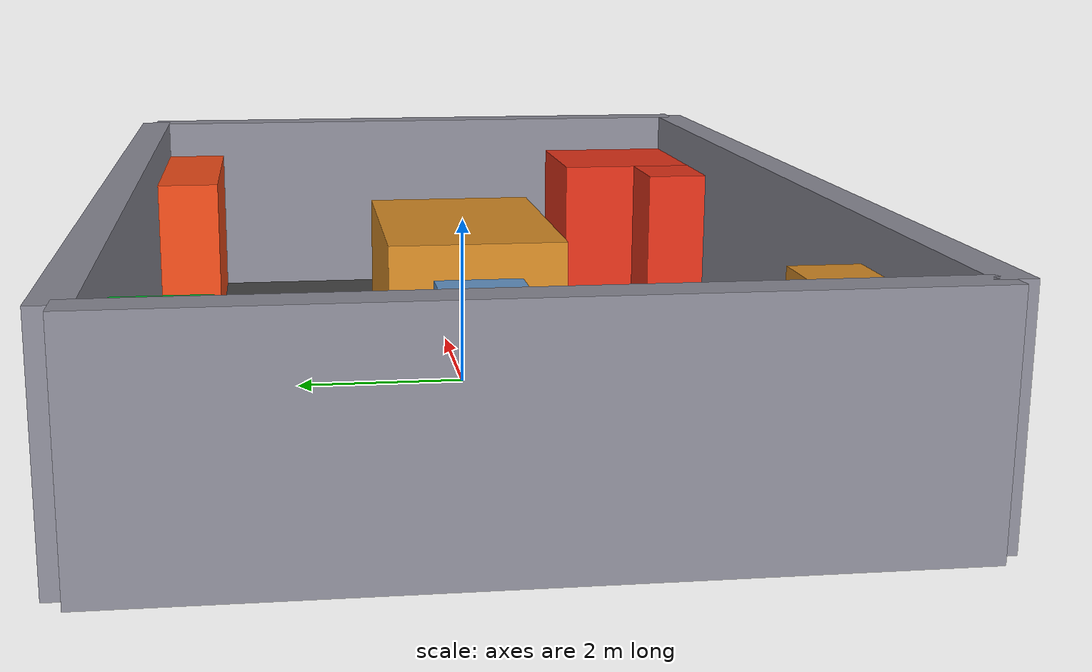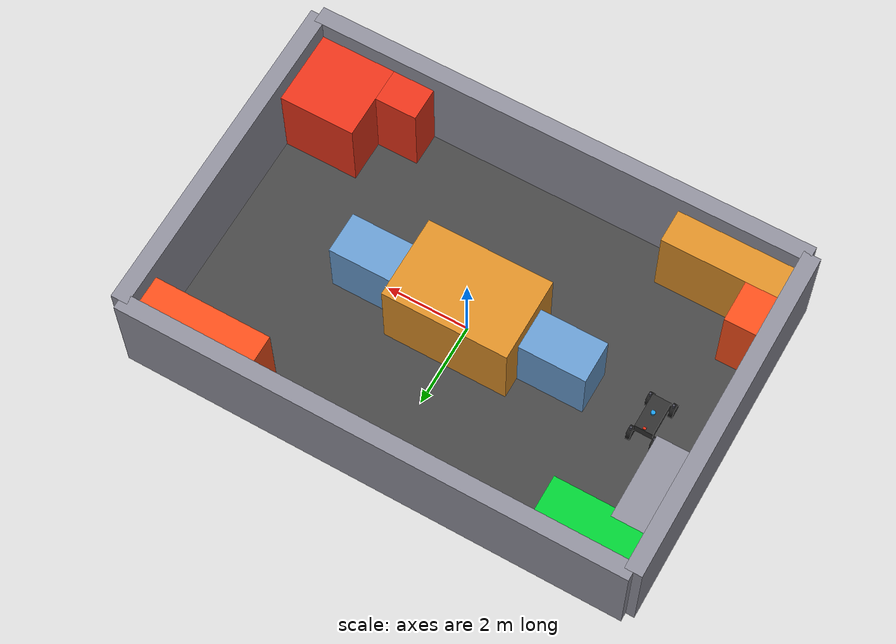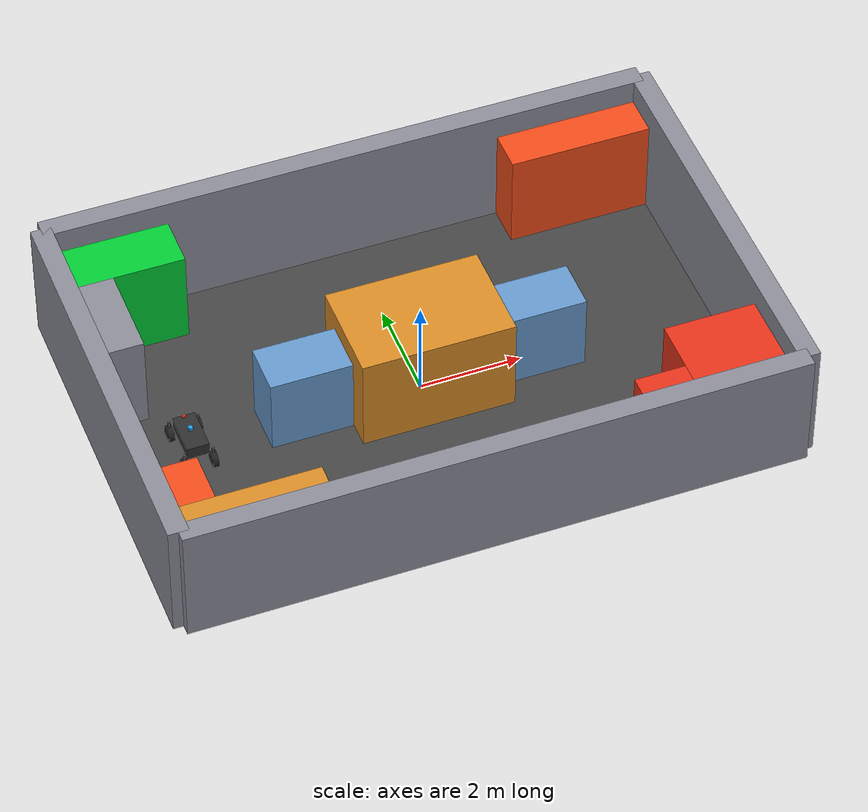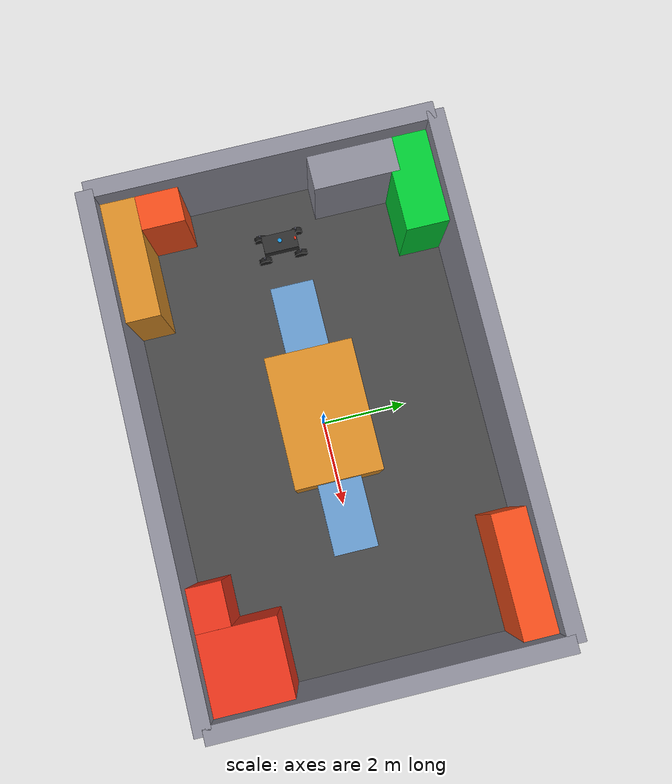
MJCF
<mujoco model="ranger_test_env">
  <compiler angle="radian" meshdir="C:\Users\sanmi\Desktop\projects\RL\ranger_mujoco\meshes/"/>

  <option timestep="0.004" integrator="RK4"/>

  <default>
    <joint armature="0.01" damping="1"/>
    <geom condim="4" friction="1.2 0.01 0.001"/>
  </default>

  <asset>
    <texture type="2d" colorspace="auto" name="floor_tex" builtin="checker" rgb1="0.22 0.22 0.22" rgb2="0.32 0.32 0.32" width="512" height="512"/>
    <material name="floor_mat" texture="floor_tex" texrepeat="20 20"/>
    <material name="start_mat" rgba="0 0.8 0.2 1"/>
    <material name="finish_mat" rgba="0.9 0.2 0.1 1"/>
    <material name="wall_mat" rgba="0.55 0.55 0.6 1"/>
    <material name="box_mat" rgba="0.85 0.55 0.15 1"/>
    <material name="cone_mat" rgba="0.95 0.3 0.1 1"/>
    <material name="ramp_mat" rgba="0.4 0.6 0.8 1"/>
    <material name="chassis_mat" rgba="0.18 0.18 0.18 1"/>
    <material name="wheel_mat" rgba="0.12 0.12 0.12 1"/>
    <material name="steering_mat" rgba="0.3 0.3 0.35 1"/>
    <material name="cam_mat" rgba="0.9 0.2 0.1 1"/>
    <material name="lidar_mat" rgba="0.1 0.6 0.9 1"/>
  </asset>

  <worldbody>
    <geom name="floor" size="6 4 0.1" type="plane" material="floor_mat"/>
    <geom name="wall_n" size="6 0.2 1.25" pos="0 4 1.25" type="box" material="wall_mat"/>
    <geom name="wall_s" size="6 0.2 1.25" pos="0 -4 1.25" type="box" material="wall_mat"/>
    <geom name="wall_e" size="0.2 4 1.25" pos="6 0 1.25" type="box" material="wall_mat"/>
    <geom name="wall_w" size="0.2 4 1.25" pos="-6 0 1.25" type="box" material="wall_mat"/>
    <geom name="obs_center" size="1.5 1 1" pos="0 0 1" type="box" material="box_mat"/>
    <geom name="obs_center_l" size="0.8 0.5 0.8" pos="-2.3 0 0.8" type="box" material="ramp_mat"/>
    <geom name="obs_center_r" size="0.8 0.5 0.8" pos="2.3 0 0.8" type="box" material="ramp_mat"/>
    <geom name="obs_tl1" size="1.2 0.6 1" pos="-4.8 3.4 1" type="box" material="start_mat"/>
    <geom name="obs_tl2" size="0.5 1 1" pos="-5.5 2 1" type="box" material="wall_mat"/>
    <geom name="obs_br1" size="1 1 1" pos="5 -3 1" type="box" material="finish_mat"/>
    <geom name="obs_br2" size="0.5 0.5 1" pos="3.5 -3.5 1" type="box" material="finish_mat"/>
    <geom name="obs_tr1" size="1.5 0.5 1" pos="4.5 3.5 1" type="box" material="cone_mat"/>
    <geom name="obs_bl1" size="1.5 0.5 1" pos="-4.5 -3.5 1" type="box" material="box_mat"/>
    <geom name="obs_bl2" size="0.5 0.5 1" pos="-5.5 -2.5 1" type="box" material="cone_mat"/>
    <light name="sun" pos="0 0 12" dir="0 0 -1" diffuse="0.8 0.8 0.8" specular="0.2 0.2 0.2"/>
    <light name="warm_fill" pos="-4 -2 4" dir="0.666667 0.333333 -0.666667" castshadow="false" diffuse="0.8 0.5 0.3"/>
    <light name="cool_fill" pos="4 2 4" dir="-0.666667 -0.333333 -0.666667" castshadow="false" diffuse="0.3 0.5 0.8"/>
    <light name="green_fill" pos="0 3 4" dir="0 -0.707107 -0.707107" castshadow="false" diffuse="0.2 0.6 0.3"/>
    <body name="base_link" pos="-4.5 0 0.34" quat="0.707105 0 0 0.707108">
      <inertial pos="-0.0169 0.0068 0.0578" quat="0.00119372 0.705639 -0.00126792 0.708569" mass="88.757" diaginertia="6.39438 4.90034 1.71218"/>
      <joint name="root" type="free" armature="0" damping="0"/>
      <geom name="chassis_box" size="0.42 0.22 0.12" pos="0 0 0.02" type="box" material="chassis_mat"/>
      <site name="imu_site" pos="0 0 0" size="0.01"/>
      <body name="camera_link" pos="0.38 0 0.15">
        <geom name="cam_marker" size="0.025 0.035 0.02" type="box" contype="0" conaffinity="0" material="cam_mat"/>
        <camera name="front_cam" pos="0 0 0" quat="0.707105 0 0.707108 0" fovy="80"/>
      </body>
      <body name="lidar_link" pos="0 0 0.22">
        <geom name="lidar_marker" size="0.05 0.03" type="cylinder" contype="0" conaffinity="0" material="lidar_mat"/>
        <camera name="lidar_cam" pos="0 0 0" quat="0.707105 0 0.707108 0" fovy="1"/>
      </body>
      <body name="fr_steering_link" pos="0.445 -0.28 0.0335">
        <inertial pos="0.0001118 -0.0073218 -0.085228" quat="0.501203 0.501505 -0.498791 0.498493" mass="2.0957" diaginertia="0.00792211 0.0077827 0.0012664"/>
        <joint name="fr_steering_joint" pos="0 0 0" axis="0 0 -1" range="-0.6109 0.6109" armature="0.05" damping="5"/>
        <geom name="fr_knuckle" size="0.025 0.06" pos="0 0 -0.06" type="cylinder" contype="0" conaffinity="0" material="steering_mat"/>
        <body name="fr_wheel_link" pos="0 0.001 -0.2918">
          <inertial pos="-0.00095 0 0.0021" quat="2.22586e-06 0.707112 2.22589e-06 0.707102" mass="11.468" diaginertia="0.11423 0.08008 0.05332"/>
          <joint name="fr_wheel_joint" pos="0 0 0" axis="0 1 0" limited="false" damping="0.5"/>
          <geom name="fr_wheel_col" size="0.16 0.055" quat="0.707105 0.707108 0 0" type="cylinder" material="wheel_mat"/>
        </body>
      </body>
      <body name="fl_steering_wheel_link" pos="0.445 0.28 0.0335">
        <inertial pos="0.00010411 0.0077919 -0.086394" quat="0.50254 0.50229 -0.497448 0.497698" mass="2.1046" diaginertia="0.00792301 0.00778359 0.0012676"/>
        <joint name="fl_steering_joint" pos="0 0 0" axis="0 0 -1" range="-0.6109 0.6109" armature="0.05" damping="5"/>
        <geom name="fl_knuckle" size="0.025 0.06" pos="0 0 -0.06" type="cylinder" contype="0" conaffinity="0" material="steering_mat"/>
        <body name="fl_wheel_link" pos="0 -0.001 -0.29345">
          <inertial pos="0.000311 0 -0.002099" quat="2.22586e-06 0.707112 2.22589e-06 0.707102" mass="11.4679" diaginertia="0.11423 0.08008 0.05332"/>
          <joint name="fl_wheel_joint" pos="0 0 0" axis="0 1 0" limited="false" damping="0.5"/>
          <geom name="fl_wheel_col" size="0.16 0.055" quat="0.707105 0.707108 0 0" type="cylinder" material="wheel_mat"/>
        </body>
      </body>
      <body name="rl_steering_wheel_link" pos="-0.445 0.28 0.0335">
        <inertial pos="0.000105 0.007473 -0.085165" quat="0.502547 0.502297 -0.497441 0.497691" mass="2.09214" diaginertia="0.00792201 0.00778299 0.001266"/>
        <joint name="rl_steering_joint" pos="0 0 0" axis="0 0 -1" range="-0.6109 0.6109" armature="0.05" damping="5"/>
        <geom name="rl_knuckle" size="0.025 0.06" pos="0 0 -0.06" type="cylinder" contype="0" conaffinity="0" material="steering_mat"/>
        <body name="rl_wheel_link" pos="0 -0.001 -0.29345">
          <inertial pos="0.000311 0 -0.002099" quat="2.22586e-06 0.707112 2.22589e-06 0.707102" mass="11.4679" diaginertia="0.11423 0.08008 0.05332"/>
          <joint name="rl_wheel_joint" pos="0 0 0" axis="0 1 0" limited="false" damping="0.5"/>
          <geom name="rl_wheel_col" size="0.16 0.055" quat="0.707105 0.707108 0 0" type="cylinder" material="wheel_mat"/>
        </body>
      </body>
      <body name="rr_steering_wheel_link" pos="-0.445 -0.28 0.0335">
        <inertial pos="0.000105 0.007473 -0.085165" quat="0.502547 0.502297 -0.497441 0.497691" mass="2.09214" diaginertia="0.00792201 0.00778299 0.001266"/>
        <joint name="rr_steering_joint" pos="0 0 0" axis="0 0 -1" range="-0.6109 0.6109" armature="0.05" damping="5"/>
        <geom name="rr_knuckle" size="0.025 0.06" pos="0 0 -0.06" type="cylinder" contype="0" conaffinity="0" material="steering_mat"/>
        <body name="rr_wheel_link" pos="0 0.001 -0.2918">
          <inertial pos="-0.000951 0 0.002095" quat="2.22586e-06 0.707112 2.22589e-06 0.707102" mass="11.4679" diaginertia="0.11423 0.08008 0.05332"/>
          <joint name="rr_wheel_joint" pos="0 0 0" axis="0 1 0" limited="false" damping="0.5"/>
          <geom name="rr_wheel_col" size="0.16 0.055" quat="0.707105 0.707108 0 0" type="cylinder" material="wheel_mat"/>
        </body>
      </body>
    </body>
  </worldbody>

  <actuator>
    <general name="act_fl_steer" joint="fl_steering_joint" ctrlrange="-0.6109 0.6109" biastype="affine" gainprm="100" biasprm="0 -100"/>
    <general name="act_fr_steer" joint="fr_steering_joint" ctrlrange="-0.6109 0.6109" biastype="affine" gainprm="100" biasprm="0 -100"/>
    <general name="act_rl_steer" joint="rl_steering_joint" ctrlrange="-0.6109 0.6109" biastype="affine" gainprm="100" biasprm="0 -100"/>
    <general name="act_rr_steer" joint="rr_steering_joint" ctrlrange="-0.6109 0.6109" biastype="affine" gainprm="100" biasprm="0 -100"/>
    <general name="act_fl_drive" joint="fl_wheel_joint" biastype="affine" gainprm="60" biasprm="0 0 -60"/>
    <general name="act_fr_drive" joint="fr_wheel_joint" biastype="affine" gainprm="60" biasprm="0 0 -60"/>
    <general name="act_rl_drive" joint="rl_wheel_joint" biastype="affine" gainprm="60" biasprm="0 0 -60"/>
    <general name="act_rr_drive" joint="rr_wheel_joint" biastype="affine" gainprm="60" biasprm="0 0 -60"/>
  </actuator>

  <sensor>
    <accelerometer site="imu_site" name="imu_accel"/>
    <gyro site="imu_site" name="imu_gyro"/>
    <jointvel joint="fl_wheel_joint" name="fl_wheel_vel"/>
    <jointvel joint="fr_wheel_joint" name="fr_wheel_vel"/>
    <jointvel joint="rl_wheel_joint" name="rl_wheel_vel"/>
    <jointvel joint="rr_wheel_joint" name="rr_wheel_vel"/>
    <jointpos joint="fl_steering_joint" name="fl_steer_pos"/>
    <jointpos joint="fr_steering_joint" name="fr_steer_pos"/>
    <jointpos joint="rl_steering_joint" name="rl_steer_pos"/>
    <jointpos joint="rr_steering_joint" name="rr_steer_pos"/>
  </sensor>
</mujoco>
